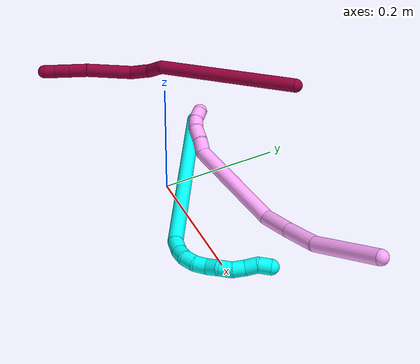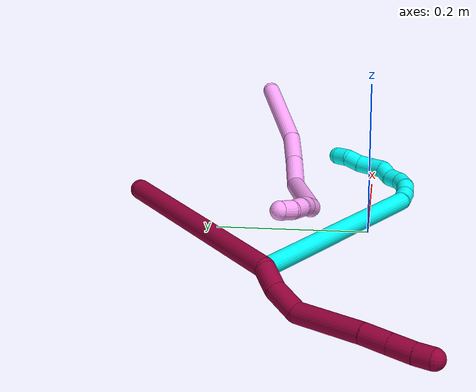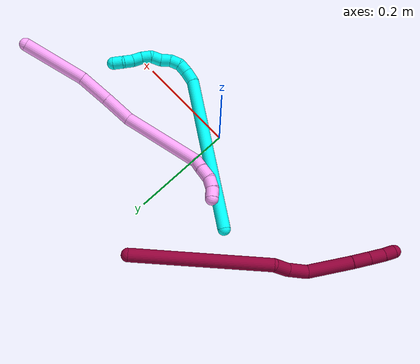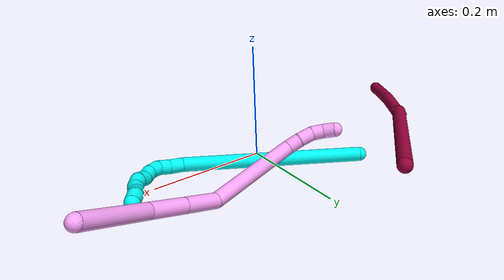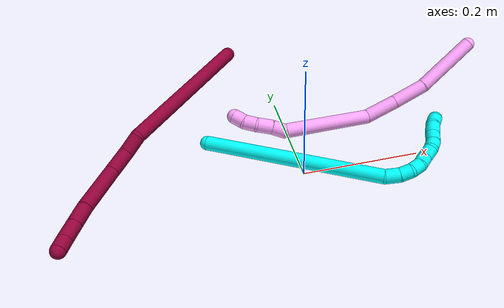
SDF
<sdf version="1.7">
 <world name="default">
  <model name="3">
   <static>0</static>
   <link name="3">
    <collision name="collision-cylinder-e_1_1_4">
     <pose>0.138157 -0.073204 -0.004298 1.62945 1.08284 1.13537</pose>
     <geometry><cylinder><radius>0.0125</radius><length>0.312823</length></cylinder></geometry>
     <surface>
      <friction><ode><mu>1.16</mu><mu2>1.16</mu2><slip1>0</slip1><slip2>0</slip2></ode></friction>
      <contact><ode><kp>1e+06</kp><kd>1</kd><max_vel>0</max_vel><min_depth>0.001</min_depth></ode></contact>
     </surface>
    </collision>
    <visual name="visual-cylinder-e_1_1_4">
     <pose>0.138157 -0.073204 -0.004298 1.62945 1.08284 1.13537</pose>
     <geometry><cylinder><radius>0.0125</radius><length>0.312823</length></cylinder></geometry>
     <material><ambient>0.003922 1 0.996078 1</ambient></material>
    </visual>
    <collision name="collision-cylinder-e_2_4_5">
     <pose>0.288252 -0.148727 -0.006095 0.747762 1.29242 0.57541</pose>
     <geometry><cylinder><radius>0.0125</radius><length>0.024833</length></cylinder></geometry>
     <surface>
      <friction><ode><mu>1.16</mu><mu2>1.16</mu2><slip1>0</slip1><slip2>0</slip2></ode></friction>
      <contact><ode><kp>1e+06</kp><kd>1</kd><max_vel>0</max_vel><min_depth>0.001</min_depth></ode></contact>
     </surface>
    </collision>
    <visual name="visual-cylinder-e_2_4_5">
     <pose>0.288252 -0.148727 -0.006095 0.747762 1.29242 0.57541</pose>
     <geometry><cylinder><radius>0.0125</radius><length>0.024833</length></cylinder></geometry>
     <material><ambient>0.003922 1 0.996078 1</ambient></material>
    </visual>
    <collision name="collision-cylinder-e_3_5_6">
     <pose>0.309434 -0.15204 0.000753 0.224431 1.12141 0.141286</pose>
     <geometry><cylinder><radius>0.0125</radius><length>0.020525</length></cylinder></geometry>
     <surface>
      <friction><ode><mu>1.16</mu><mu2>1.16</mu2><slip1>0</slip1><slip2>0</slip2></ode></friction>
      <contact><ode><kp>1e+06</kp><kd>1</kd><max_vel>0</max_vel><min_depth>0.001</min_depth></ode></contact>
     </surface>
    </collision>
    <visual name="visual-cylinder-e_3_5_6">
     <pose>0.309434 -0.15204 0.000753 0.224431 1.12141 0.141286</pose>
     <geometry><cylinder><radius>0.0125</radius><length>0.020525</length></cylinder></geometry>
     <material><ambient>0.003922 1 0.996078 1</ambient></material>
    </visual>
    <collision name="collision-cylinder-e_4_6_7">
     <pose>0.327327 -0.149508 0.009386 -0.687976 1.0004 -0.386699</pose>
     <geometry><cylinder><radius>0.0125</radius><length>0.020554</length></cylinder></geometry>
     <surface>
      <friction><ode><mu>1.16</mu><mu2>1.16</mu2><slip1>0</slip1><slip2>0</slip2></ode></friction>
      <contact><ode><kp>1e+06</kp><kd>1</kd><max_vel>0</max_vel><min_depth>0.001</min_depth></ode></contact>
     </surface>
    </collision>
    <visual name="visual-cylinder-e_4_6_7">
     <pose>0.327327 -0.149508 0.009386 -0.687976 1.0004 -0.386699</pose>
     <geometry><cylinder><radius>0.0125</radius><length>0.020554</length></cylinder></geometry>
     <material><ambient>0.003922 1 0.996078 1</ambient></material>
    </visual>
    <collision name="collision-cylinder-e_5_7_8">
     <pose>0.342434 -0.139325 0.018366 -0.956951 0.670161 -0.357365</pose>
     <geometry><cylinder><radius>0.0125</radius><length>0.020789</length></cylinder></geometry>
     <surface>
      <friction><ode><mu>1.16</mu><mu2>1.16</mu2><slip1>0</slip1><slip2>0</slip2></ode></friction>
      <contact><ode><kp>1e+06</kp><kd>1</kd><max_vel>0</max_vel><min_depth>0.001</min_depth></ode></contact>
     </surface>
    </collision>
    <visual name="visual-cylinder-e_5_7_8">
     <pose>0.342434 -0.139325 0.018366 -0.956951 0.670161 -0.357365</pose>
     <geometry><cylinder><radius>0.0125</radius><length>0.020789</length></cylinder></geometry>
     <material><ambient>0.003922 1 0.996078 1</ambient></material>
    </visual>
    <collision name="collision-cylinder-e_6_8_9">
     <pose>0.355185 -0.129163 0.030053 -0.464281 0.677576 -0.16622</pose>
     <geometry><cylinder><radius>0.0125</radius><length>0.020082</length></cylinder></geometry>
     <surface>
      <friction><ode><mu>1.16</mu><mu2>1.16</mu2><slip1>0</slip1><slip2>0</slip2></ode></friction>
      <contact><ode><kp>1e+06</kp><kd>1</kd><max_vel>0</max_vel><min_depth>0.001</min_depth></ode></contact>
     </surface>
    </collision>
    <visual name="visual-cylinder-e_6_8_9">
     <pose>0.355185 -0.129163 0.030053 -0.464281 0.677576 -0.16622</pose>
     <geometry><cylinder><radius>0.0125</radius><length>0.020082</length></cylinder></geometry>
     <material><ambient>0.003922 1 0.996078 1</ambient></material>
    </visual>
    <collision name="collision-cylinder-e_7_9_10">
     <pose>0.366541 -0.118111 0.041249 -1.06292 0.529953 -0.316386</pose>
     <geometry><cylinder><radius>0.0125</radius><length>0.020026</length></cylinder></geometry>
     <surface>
      <friction><ode><mu>1.16</mu><mu2>1.16</mu2><slip1>0</slip1><slip2>0</slip2></ode></friction>
      <contact><ode><kp>1e+06</kp><kd>1</kd><max_vel>0</max_vel><min_depth>0.001</min_depth></ode></contact>
     </surface>
    </collision>
    <visual name="visual-cylinder-e_7_9_10">
     <pose>0.366541 -0.118111 0.041249 -1.06292 0.529953 -0.316386</pose>
     <geometry><cylinder><radius>0.0125</radius><length>0.020026</length></cylinder></geometry>
     <material><ambient>0.003922 1 0.996078 1</ambient></material>
    </visual>
    <collision name="collision-cylinder-e_8_10_11">
     <pose>0.373842 -0.102319 0.050891 -0.987389 0.222951 -0.120334</pose>
     <geometry><cylinder><radius>0.0125</radius><length>0.020255</length></cylinder></geometry>
     <surface>
      <friction><ode><mu>1.16</mu><mu2>1.16</mu2><slip1>0</slip1><slip2>0</slip2></ode></friction>
      <contact><ode><kp>1e+06</kp><kd>1</kd><max_vel>0</max_vel><min_depth>0.001</min_depth></ode></contact>
     </surface>
    </collision>
    <visual name="visual-cylinder-e_8_10_11">
     <pose>0.373842 -0.102319 0.050891 -0.987389 0.222951 -0.120334</pose>
     <geometry><cylinder><radius>0.0125</radius><length>0.020255</length></cylinder></geometry>
     <material><ambient>0.003922 1 0.996078 1</ambient></material>
    </visual>
    <collision name="collision-cylinder-e_9_11_12">
     <pose>0.37854 -0.087275 0.063304 -0.773012 0.24736 -0.1011</pose>
     <geometry><cylinder><radius>0.0125</radius><length>0.020092</length></cylinder></geometry>
     <surface>
      <friction><ode><mu>1.16</mu><mu2>1.16</mu2><slip1>0</slip1><slip2>0</slip2></ode></friction>
      <contact><ode><kp>1e+06</kp><kd>1</kd><max_vel>0</max_vel><min_depth>0.001</min_depth></ode></contact>
     </surface>
    </collision>
    <visual name="visual-cylinder-e_9_11_12">
     <pose>0.37854 -0.087275 0.063304 -0.773012 0.24736 -0.1011</pose>
     <geometry><cylinder><radius>0.0125</radius><length>0.020092</length></cylinder></geometry>
     <material><ambient>0.003922 1 0.996078 1</ambient></material>
    </visual>
    <collision name="collision-cylinder-e_10_12_2">
     <pose>0.386054 -0.072851 0.074349 -1.08011 0.529131 -0.322021</pose>
     <geometry><cylinder><radius>0.0125</radius><length>0.020022</length></cylinder></geometry>
     <surface>
      <friction><ode><mu>1.16</mu><mu2>1.16</mu2><slip1>0</slip1><slip2>0</slip2></ode></friction>
      <contact><ode><kp>1e+06</kp><kd>1</kd><max_vel>0</max_vel><min_depth>0.001</min_depth></ode></contact>
     </surface>
    </collision>
    <visual name="visual-cylinder-e_10_12_2">
     <pose>0.386054 -0.072851 0.074349 -1.08011 0.529131 -0.322021</pose>
     <geometry><cylinder><radius>0.0125</radius><length>0.020022</length></cylinder></geometry>
     <material><ambient>0.003922 1 0.996078 1</ambient></material>
    </visual>
    <collision name="collision-sphere-2">
     <pose>0.391107 -0.065228 0.078421 0 -0 0</pose>
     <geometry><sphere><radius>0.0125</radius></sphere></geometry>
     <surface>
      <friction><ode><mu>1.16</mu><mu2>1.16</mu2><slip1>0</slip1><slip2>0</slip2></ode></friction>
      <contact><ode><kp>1e+06</kp><kd>1</kd><max_vel>0</max_vel><min_depth>0.001</min_depth></ode></contact>
     </surface>
    </collision>
    <visual name="visual-sphere-2">
     <pose>0.391107 -0.065228 0.078421 0 -0 0</pose>
     <geometry><sphere><radius>0.0125</radius></sphere></geometry>
     <material><ambient>0.003922 1 0.996078 1</ambient></material>
    </visual>
    <collision name="collision-sphere-12">
     <pose>0.381 -0.080473 0.070276 0 -0 0</pose>
     <geometry><sphere><radius>0.0125</radius></sphere></geometry>
     <surface>
      <friction><ode><mu>1.16</mu><mu2>1.16</mu2><slip1>0</slip1><slip2>0</slip2></ode></friction>
      <contact><ode><kp>1e+06</kp><kd>1</kd><max_vel>0</max_vel><min_depth>0.001</min_depth></ode></contact>
     </surface>
    </collision>
    <visual name="visual-sphere-12">
     <pose>0.381 -0.080473 0.070276 0 -0 0</pose>
     <geometry><sphere><radius>0.0125</radius></sphere></geometry>
     <material><ambient>0.003922 1 0.996078 1</ambient></material>
    </visual>
    <collision name="collision-sphere-11">
     <pose>0.376081 -0.094076 0.056332 0 -0 0</pose>
     <geometry><sphere><radius>0.0125</radius></sphere></geometry>
     <surface>
      <friction><ode><mu>1.16</mu><mu2>1.16</mu2><slip1>0</slip1><slip2>0</slip2></ode></friction>
      <contact><ode><kp>1e+06</kp><kd>1</kd><max_vel>0</max_vel><min_depth>0.001</min_depth></ode></contact>
     </surface>
    </collision>
    <visual name="visual-sphere-11">
     <pose>0.376081 -0.094076 0.056332 0 -0 0</pose>
     <geometry><sphere><radius>0.0125</radius></sphere></geometry>
     <material><ambient>0.003922 1 0.996078 1</ambient></material>
    </visual>
    <collision name="collision-sphere-10">
     <pose>0.371602 -0.110562 0.045451 0 -0 0</pose>
     <geometry><sphere><radius>0.0125</radius></sphere></geometry>
     <surface>
      <friction><ode><mu>1.16</mu><mu2>1.16</mu2><slip1>0</slip1><slip2>0</slip2></ode></friction>
      <contact><ode><kp>1e+06</kp><kd>1</kd><max_vel>0</max_vel><min_depth>0.001</min_depth></ode></contact>
     </surface>
    </collision>
    <visual name="visual-sphere-10">
     <pose>0.371602 -0.110562 0.045451 0 -0 0</pose>
     <geometry><sphere><radius>0.0125</radius></sphere></geometry>
     <material><ambient>0.003922 1 0.996078 1</ambient></material>
    </visual>
    <collision name="collision-sphere-9">
     <pose>0.361479 -0.12566 0.037047 0 -0 0</pose>
     <geometry><sphere><radius>0.0125</radius></sphere></geometry>
     <surface>
      <friction><ode><mu>1.16</mu><mu2>1.16</mu2><slip1>0</slip1><slip2>0</slip2></ode></friction>
      <contact><ode><kp>1e+06</kp><kd>1</kd><max_vel>0</max_vel><min_depth>0.001</min_depth></ode></contact>
     </surface>
    </collision>
    <visual name="visual-sphere-9">
     <pose>0.361479 -0.12566 0.037047 0 -0 0</pose>
     <geometry><sphere><radius>0.0125</radius></sphere></geometry>
     <material><ambient>0.003922 1 0.996078 1</ambient></material>
    </visual>
    <collision name="collision-sphere-4">
     <pose>0.276313 -0.146407 -0.008597 0 -0 0</pose>
     <geometry><sphere><radius>0.0125</radius></sphere></geometry>
     <surface>
      <friction><ode><mu>1.16</mu><mu2>1.16</mu2><slip1>0</slip1><slip2>0</slip2></ode></friction>
      <contact><ode><kp>1e+06</kp><kd>1</kd><max_vel>0</max_vel><min_depth>0.001</min_depth></ode></contact>
     </surface>
    </collision>
    <visual name="visual-sphere-4">
     <pose>0.276313 -0.146407 -0.008597 0 -0 0</pose>
     <geometry><sphere><radius>0.0125</radius></sphere></geometry>
     <material><ambient>0.003922 1 0.996078 1</ambient></material>
    </visual>
    <collision name="collision-sphere-1">
     <geometry><sphere><radius>0.0125</radius></sphere></geometry>
     <surface>
      <friction><ode><mu>1.16</mu><mu2>1.16</mu2><slip1>0</slip1><slip2>0</slip2></ode></friction>
      <contact><ode><kp>1e+06</kp><kd>1</kd><max_vel>0</max_vel><min_depth>0.001</min_depth></ode></contact>
     </surface>
    </collision>
    <visual name="visual-sphere-1">
     <geometry><sphere><radius>0.0125</radius></sphere></geometry>
     <material><ambient>0.003922 1 0.996078 1</ambient></material>
    </visual>
    <collision name="collision-sphere-8">
     <pose>0.34889 -0.132666 0.023058 0 -0 0</pose>
     <geometry><sphere><radius>0.0125</radius></sphere></geometry>
     <surface>
      <friction><ode><mu>1.16</mu><mu2>1.16</mu2><slip1>0</slip1><slip2>0</slip2></ode></friction>
      <contact><ode><kp>1e+06</kp><kd>1</kd><max_vel>0</max_vel><min_depth>0.001</min_depth></ode></contact>
     </surface>
    </collision>
    <visual name="visual-sphere-8">
     <pose>0.34889 -0.132666 0.023058 0 -0 0</pose>
     <geometry><sphere><radius>0.0125</radius></sphere></geometry>
     <material><ambient>0.003922 1 0.996078 1</ambient></material>
    </visual>
    <collision name="collision-sphere-5">
     <pose>0.30019 -0.151047 -0.003594 0 -0 0</pose>
     <geometry><sphere><radius>0.0125</radius></sphere></geometry>
     <surface>
      <friction><ode><mu>1.16</mu><mu2>1.16</mu2><slip1>0</slip1><slip2>0</slip2></ode></friction>
      <contact><ode><kp>1e+06</kp><kd>1</kd><max_vel>0</max_vel><min_depth>0.001</min_depth></ode></contact>
     </surface>
    </collision>
    <visual name="visual-sphere-5">
     <pose>0.30019 -0.151047 -0.003594 0 -0 0</pose>
     <geometry><sphere><radius>0.0125</radius></sphere></geometry>
     <material><ambient>0.003922 1 0.996078 1</ambient></material>
    </visual>
    <collision name="collision-sphere-6">
     <pose>0.318677 -0.153032 0.005099 0 -0 0</pose>
     <geometry><sphere><radius>0.0125</radius></sphere></geometry>
     <surface>
      <friction><ode><mu>1.16</mu><mu2>1.16</mu2><slip1>0</slip1><slip2>0</slip2></ode></friction>
      <contact><ode><kp>1e+06</kp><kd>1</kd><max_vel>0</max_vel><min_depth>0.001</min_depth></ode></contact>
     </surface>
    </collision>
    <visual name="visual-sphere-6">
     <pose>0.318677 -0.153032 0.005099 0 -0 0</pose>
     <geometry><sphere><radius>0.0125</radius></sphere></geometry>
     <material><ambient>0.003922 1 0.996078 1</ambient></material>
    </visual>
    <collision name="collision-sphere-7">
     <pose>0.335977 -0.145985 0.013673 0 -0 0</pose>
     <geometry><sphere><radius>0.0125</radius></sphere></geometry>
     <surface>
      <friction><ode><mu>1.16</mu><mu2>1.16</mu2><slip1>0</slip1><slip2>0</slip2></ode></friction>
      <contact><ode><kp>1e+06</kp><kd>1</kd><max_vel>0</max_vel><min_depth>0.001</min_depth></ode></contact>
     </surface>
    </collision>
    <visual name="visual-sphere-7">
     <pose>0.335977 -0.145985 0.013673 0 -0 0</pose>
     <geometry><sphere><radius>0.0125</radius></sphere></geometry>
     <material><ambient>0.003922 1 0.996078 1</ambient></material>
    </visual>
    <inertial>
     <pose>0.21591 -0.091854 0.00863 0 -0 0</pose>
     <mass>0.5</mass>
     <inertia>
      <ixx>0.001635</ixx>
      <ixy>0</ixy>
      <ixz>0</ixz>
      <iyy>0.00308</iyy>
      <iyz>0</iyz>
      <izz>-0.001073</izz>
     </inertia>
    </inertial>
   </link>
   <pose>-0.140367 0.121145 0.001709 -0.427833 0.189242 -0.102893</pose>
  </model>
  <model name="4">
   <static>0</static>
   <link name="4">
    <collision name="collision-cylinder-e_1_1_4">
     <pose>-0.015275 0.024396 -0.053112 -2.71101 -0.255633 1.06264</pose>
     <geometry><cylinder><radius>0.0125</radius><length>0.12082</length></cylinder></geometry>
     <surface>
      <friction><ode><mu>1.16</mu><mu2>1.16</mu2><slip1>0</slip1><slip2>0</slip2></ode></friction>
      <contact><ode><kp>1e+06</kp><kd>1</kd><max_vel>0</max_vel><min_depth>0.001</min_depth></ode></contact>
     </surface>
    </collision>
    <visual name="visual-cylinder-e_1_1_4">
     <pose>-0.015275 0.024396 -0.053112 -2.71101 -0.255633 1.06264</pose>
     <geometry><cylinder><radius>0.0125</radius><length>0.12082</length></cylinder></geometry>
     <material><ambient>1 0.65098 0.996078 1</ambient></material>
    </visual>
    <collision name="collision-cylinder-e_2_4_5">
     <pose>-0.04304 0.055819 -0.133365 -2.88823 -0.419088 2.0624</pose>
     <geometry><cylinder><radius>0.0125</radius><length>0.061385</length></cylinder></geometry>
     <surface>
      <friction><ode><mu>1.16</mu><mu2>1.16</mu2><slip1>0</slip1><slip2>0</slip2></ode></friction>
      <contact><ode><kp>1e+06</kp><kd>1</kd><max_vel>0</max_vel><min_depth>0.001</min_depth></ode></contact>
     </surface>
    </collision>
    <visual name="visual-cylinder-e_2_4_5">
     <pose>-0.04304 0.055819 -0.133365 -2.88823 -0.419088 2.0624</pose>
     <geometry><cylinder><radius>0.0125</radius><length>0.061385</length></cylinder></geometry>
     <material><ambient>1 0.65098 0.996078 1</ambient></material>
    </visual>
    <collision name="collision-cylinder-e_3_5_6">
     <pose>-0.067983 0.068787 -0.18648 -2.91676 -0.437226 2.20129</pose>
     <geometry><cylinder><radius>0.0125</radius><length>0.058821</length></cylinder></geometry>
     <surface>
      <friction><ode><mu>1.16</mu><mu2>1.16</mu2><slip1>0</slip1><slip2>0</slip2></ode></friction>
      <contact><ode><kp>1e+06</kp><kd>1</kd><max_vel>0</max_vel><min_depth>0.001</min_depth></ode></contact>
     </surface>
    </collision>
    <visual name="visual-cylinder-e_3_5_6">
     <pose>-0.067983 0.068787 -0.18648 -2.91676 -0.437226 2.20129</pose>
     <geometry><cylinder><radius>0.0125</radius><length>0.058821</length></cylinder></geometry>
     <material><ambient>1 0.65098 0.996078 1</ambient></material>
    </visual>
    <collision name="collision-cylinder-e_4_6_7">
     <pose>-0.095822 0.06078 -0.293569 2.97132 -0.184799 -1.65302</pose>
     <geometry><cylinder><radius>0.0125</radius><length>0.167464</length></cylinder></geometry>
     <surface>
      <friction><ode><mu>1.16</mu><mu2>1.16</mu2><slip1>0</slip1><slip2>0</slip2></ode></friction>
      <contact><ode><kp>1e+06</kp><kd>1</kd><max_vel>0</max_vel><min_depth>0.001</min_depth></ode></contact>
     </surface>
    </collision>
    <visual name="visual-cylinder-e_4_6_7">
     <pose>-0.095822 0.06078 -0.293569 2.97132 -0.184799 -1.65302</pose>
     <geometry><cylinder><radius>0.0125</radius><length>0.167464</length></cylinder></geometry>
     <material><ambient>1 0.65098 0.996078 1</ambient></material>
    </visual>
    <collision name="collision-cylinder-e_5_7_8">
     <pose>-0.115599 0.040248 -0.383652 2.50811 -0.37599 -1.05176</pose>
     <geometry><cylinder><radius>0.0125</radius><length>0.023922</length></cylinder></geometry>
     <surface>
      <friction><ode><mu>1.16</mu><mu2>1.16</mu2><slip1>0</slip1><slip2>0</slip2></ode></friction>
      <contact><ode><kp>1e+06</kp><kd>1</kd><max_vel>0</max_vel><min_depth>0.001</min_depth></ode></contact>
     </surface>
    </collision>
    <visual name="visual-cylinder-e_5_7_8">
     <pose>-0.115599 0.040248 -0.383652 2.50811 -0.37599 -1.05176</pose>
     <geometry><cylinder><radius>0.0125</radius><length>0.023922</length></cylinder></geometry>
     <material><ambient>1 0.65098 0.996078 1</ambient></material>
    </visual>
    <collision name="collision-cylinder-e_6_8_9">
     <pose>-0.125293 0.028248 -0.403143 2.66641 -0.421146 -1.44626</pose>
     <geometry><cylinder><radius>0.0125</radius><length>0.025938</length></cylinder></geometry>
     <surface>
      <friction><ode><mu>1.16</mu><mu2>1.16</mu2><slip1>0</slip1><slip2>0</slip2></ode></friction>
      <contact><ode><kp>1e+06</kp><kd>1</kd><max_vel>0</max_vel><min_depth>0.001</min_depth></ode></contact>
     </surface>
    </collision>
    <visual name="visual-cylinder-e_6_8_9">
     <pose>-0.125293 0.028248 -0.403143 2.66641 -0.421146 -1.44626</pose>
     <geometry><cylinder><radius>0.0125</radius><length>0.025938</length></cylinder></geometry>
     <material><ambient>1 0.65098 0.996078 1</ambient></material>
    </visual>
    <collision name="collision-cylinder-e_7_9_10">
     <pose>-0.137673 0.018544 -0.420048 2.54983 -0.744114 -1.81532</pose>
     <geometry><cylinder><radius>0.0125</radius><length>0.020901</length></cylinder></geometry>
     <surface>
      <friction><ode><mu>1.16</mu><mu2>1.16</mu2><slip1>0</slip1><slip2>0</slip2></ode></friction>
      <contact><ode><kp>1e+06</kp><kd>1</kd><max_vel>0</max_vel><min_depth>0.001</min_depth></ode></contact>
     </surface>
    </collision>
    <visual name="visual-cylinder-e_7_9_10">
     <pose>-0.137673 0.018544 -0.420048 2.54983 -0.744114 -1.81532</pose>
     <geometry><cylinder><radius>0.0125</radius><length>0.020901</length></cylinder></geometry>
     <material><ambient>1 0.65098 0.996078 1</ambient></material>
    </visual>
    <collision name="collision-cylinder-e_8_10_2">
     <pose>-0.152737 0.008633 -0.429929 2.12762 -0.878409 -1.4042</pose>
     <geometry><cylinder><radius>0.0125</radius><length>0.02075</length></cylinder></geometry>
     <surface>
      <friction><ode><mu>1.16</mu><mu2>1.16</mu2><slip1>0</slip1><slip2>0</slip2></ode></friction>
      <contact><ode><kp>1e+06</kp><kd>1</kd><max_vel>0</max_vel><min_depth>0.001</min_depth></ode></contact>
     </surface>
    </collision>
    <visual name="visual-cylinder-e_8_10_2">
     <pose>-0.152737 0.008633 -0.429929 2.12762 -0.878409 -1.4042</pose>
     <geometry><cylinder><radius>0.0125</radius><length>0.02075</length></cylinder></geometry>
     <material><ambient>1 0.65098 0.996078 1</ambient></material>
    </visual>
    <collision name="collision-sphere-2">
     <pose>-0.160723 0.00301 -0.43343 0 -0 0</pose>
     <geometry><sphere><radius>0.0125</radius></sphere></geometry>
     <surface>
      <friction><ode><mu>1.16</mu><mu2>1.16</mu2><slip1>0</slip1><slip2>0</slip2></ode></friction>
      <contact><ode><kp>1e+06</kp><kd>1</kd><max_vel>0</max_vel><min_depth>0.001</min_depth></ode></contact>
     </surface>
    </collision>
    <visual name="visual-sphere-2">
     <pose>-0.160723 0.00301 -0.43343 0 -0 0</pose>
     <geometry><sphere><radius>0.0125</radius></sphere></geometry>
     <material><ambient>1 0.65098 0.996078 1</ambient></material>
    </visual>
    <collision name="collision-sphere-10">
     <pose>-0.144751 0.014255 -0.426429 0 -0 0</pose>
     <geometry><sphere><radius>0.0125</radius></sphere></geometry>
     <surface>
      <friction><ode><mu>1.16</mu><mu2>1.16</mu2><slip1>0</slip1><slip2>0</slip2></ode></friction>
      <contact><ode><kp>1e+06</kp><kd>1</kd><max_vel>0</max_vel><min_depth>0.001</min_depth></ode></contact>
     </surface>
    </collision>
    <visual name="visual-sphere-10">
     <pose>-0.144751 0.014255 -0.426429 0 -0 0</pose>
     <geometry><sphere><radius>0.0125</radius></sphere></geometry>
     <material><ambient>1 0.65098 0.996078 1</ambient></material>
    </visual>
    <collision name="collision-sphere-9">
     <pose>-0.130595 0.022833 -0.413667 0 -0 0</pose>
     <geometry><sphere><radius>0.0125</radius></sphere></geometry>
     <surface>
      <friction><ode><mu>1.16</mu><mu2>1.16</mu2><slip1>0</slip1><slip2>0</slip2></ode></friction>
      <contact><ode><kp>1e+06</kp><kd>1</kd><max_vel>0</max_vel><min_depth>0.001</min_depth></ode></contact>
     </surface>
    </collision>
    <visual name="visual-sphere-9">
     <pose>-0.130595 0.022833 -0.413667 0 -0 0</pose>
     <geometry><sphere><radius>0.0125</radius></sphere></geometry>
     <material><ambient>1 0.65098 0.996078 1</ambient></material>
    </visual>
    <collision name="collision-sphere-4">
     <pose>-0.03055 0.048792 -0.106223 0 -0 0</pose>
     <geometry><sphere><radius>0.0125</radius></sphere></geometry>
     <surface>
      <friction><ode><mu>1.16</mu><mu2>1.16</mu2><slip1>0</slip1><slip2>0</slip2></ode></friction>
      <contact><ode><kp>1e+06</kp><kd>1</kd><max_vel>0</max_vel><min_depth>0.001</min_depth></ode></contact>
     </surface>
    </collision>
    <visual name="visual-sphere-4">
     <pose>-0.03055 0.048792 -0.106223 0 -0 0</pose>
     <geometry><sphere><radius>0.0125</radius></sphere></geometry>
     <material><ambient>1 0.65098 0.996078 1</ambient></material>
    </visual>
    <collision name="collision-sphere-1">
     <geometry><sphere><radius>0.0125</radius></sphere></geometry>
     <surface>
      <friction><ode><mu>1.16</mu><mu2>1.16</mu2><slip1>0</slip1><slip2>0</slip2></ode></friction>
      <contact><ode><kp>1e+06</kp><kd>1</kd><max_vel>0</max_vel><min_depth>0.001</min_depth></ode></contact>
     </surface>
    </collision>
    <visual name="visual-sphere-1">
     <geometry><sphere><radius>0.0125</radius></sphere></geometry>
     <material><ambient>1 0.65098 0.996078 1</ambient></material>
    </visual>
    <collision name="collision-sphere-8">
     <pose>-0.119991 0.033663 -0.392618 0 -0 0</pose>
     <geometry><sphere><radius>0.0125</radius></sphere></geometry>
     <surface>
      <friction><ode><mu>1.16</mu><mu2>1.16</mu2><slip1>0</slip1><slip2>0</slip2></ode></friction>
      <contact><ode><kp>1e+06</kp><kd>1</kd><max_vel>0</max_vel><min_depth>0.001</min_depth></ode></contact>
     </surface>
    </collision>
    <visual name="visual-sphere-8">
     <pose>-0.119991 0.033663 -0.392618 0 -0 0</pose>
     <geometry><sphere><radius>0.0125</radius></sphere></geometry>
     <material><ambient>1 0.65098 0.996078 1</ambient></material>
    </visual>
    <collision name="collision-sphere-5">
     <pose>-0.05553 0.062847 -0.160506 0 -0 0</pose>
     <geometry><sphere><radius>0.0125</radius></sphere></geometry>
     <surface>
      <friction><ode><mu>1.16</mu><mu2>1.16</mu2><slip1>0</slip1><slip2>0</slip2></ode></friction>
      <contact><ode><kp>1e+06</kp><kd>1</kd><max_vel>0</max_vel><min_depth>0.001</min_depth></ode></contact>
     </surface>
    </collision>
    <visual name="visual-sphere-5">
     <pose>-0.05553 0.062847 -0.160506 0 -0 0</pose>
     <geometry><sphere><radius>0.0125</radius></sphere></geometry>
     <material><ambient>1 0.65098 0.996078 1</ambient></material>
    </visual>
    <collision name="collision-sphere-6">
     <pose>-0.080436 0.074727 -0.212453 0 -0 0</pose>
     <geometry><sphere><radius>0.0125</radius></sphere></geometry>
     <surface>
      <friction><ode><mu>1.16</mu><mu2>1.16</mu2><slip1>0</slip1><slip2>0</slip2></ode></friction>
      <contact><ode><kp>1e+06</kp><kd>1</kd><max_vel>0</max_vel><min_depth>0.001</min_depth></ode></contact>
     </surface>
    </collision>
    <visual name="visual-sphere-6">
     <pose>-0.080436 0.074727 -0.212453 0 -0 0</pose>
     <geometry><sphere><radius>0.0125</radius></sphere></geometry>
     <material><ambient>1 0.65098 0.996078 1</ambient></material>
    </visual>
    <collision name="collision-sphere-7">
     <pose>-0.111207 0.046834 -0.374685 0 -0 0</pose>
     <geometry><sphere><radius>0.0125</radius></sphere></geometry>
     <surface>
      <friction><ode><mu>1.16</mu><mu2>1.16</mu2><slip1>0</slip1><slip2>0</slip2></ode></friction>
      <contact><ode><kp>1e+06</kp><kd>1</kd><max_vel>0</max_vel><min_depth>0.001</min_depth></ode></contact>
     </surface>
    </collision>
    <visual name="visual-sphere-7">
     <pose>-0.111207 0.046834 -0.374685 0 -0 0</pose>
     <geometry><sphere><radius>0.0125</radius></sphere></geometry>
     <material><ambient>1 0.65098 0.996078 1</ambient></material>
    </visual>
    <inertial>
     <pose>-0.07319 0.045722 -0.224139 0 -0 0</pose>
     <mass>0.5</mass>
     <inertia>
      <ixx>-0.000228</ixx>
      <ixy>0</ixy>
      <ixz>0</ixz>
      <iyy>-0.000218</iyy>
      <iyz>0</iyz>
      <izz>9.8e-05</izz>
     </inertia>
    </inertial>
   </link>
   <pose>0.365479 0.165123 0.096126 -1.66013 -0.443621 -1.09016</pose>
  </model>
  <model name="8">
   <static>0</static>
   <link name="8">
    <collision name="collision-cylinder-e_1_1_4">
     <pose>-0.046524 -0.081437 0.089057 0.740736 -0.367962 -0.144258</pose>
     <geometry><cylinder><radius>0.0125</radius><length>0.258671</length></cylinder></geometry>
     <surface>
      <friction><ode><mu>1.16</mu><mu2>1.16</mu2><slip1>0</slip1><slip2>0</slip2></ode></friction>
      <contact><ode><kp>1e+06</kp><kd>1</kd><max_vel>0</max_vel><min_depth>0.001</min_depth></ode></contact>
     </surface>
    </collision>
    <visual name="visual-cylinder-e_1_1_4">
     <pose>-0.046524 -0.081437 0.089057 0.740736 -0.367962 -0.144258</pose>
     <geometry><cylinder><radius>0.0125</radius><length>0.258671</length></cylinder></geometry>
     <material><ambient>0.584314 0 0.227451 1</ambient></material>
    </visual>
    <collision name="collision-cylinder-e_2_4_5">
     <pose>-0.092322 -0.176493 0.18583 1.05533 0.046302 0.026987</pose>
     <geometry><cylinder><radius>0.0125</radius><length>0.031339</length></cylinder></geometry>
     <surface>
      <friction><ode><mu>1.16</mu><mu2>1.16</mu2><slip1>0</slip1><slip2>0</slip2></ode></friction>
      <contact><ode><kp>1e+06</kp><kd>1</kd><max_vel>0</max_vel><min_depth>0.001</min_depth></ode></contact>
     </surface>
    </collision>
    <visual name="visual-cylinder-e_2_4_5">
     <pose>-0.092322 -0.176493 0.18583 1.05533 0.046302 0.026987</pose>
     <geometry><cylinder><radius>0.0125</radius><length>0.031339</length></cylinder></geometry>
     <material><ambient>0.584314 0 0.227451 1</ambient></material>
    </visual>
    <collision name="collision-cylinder-e_3_5_6">
     <pose>-0.094146 -0.204942 0.206692 0.845504 -0.127891 -0.057598</pose>
     <geometry><cylinder><radius>0.0125</radius><length>0.039963</length></cylinder></geometry>
     <surface>
      <friction><ode><mu>1.16</mu><mu2>1.16</mu2><slip1>0</slip1><slip2>0</slip2></ode></friction>
      <contact><ode><kp>1e+06</kp><kd>1</kd><max_vel>0</max_vel><min_depth>0.001</min_depth></ode></contact>
     </surface>
    </collision>
    <visual name="visual-cylinder-e_3_5_6">
     <pose>-0.094146 -0.204942 0.206692 0.845504 -0.127891 -0.057598</pose>
     <geometry><cylinder><radius>0.0125</radius><length>0.039963</length></cylinder></geometry>
     <material><ambient>0.584314 0 0.227451 1</ambient></material>
    </visual>
    <collision name="collision-cylinder-e_4_6_7">
     <pose>-0.110627 -0.237599 0.256404 0.453615 -0.329973 -0.076811</pose>
     <geometry><cylinder><radius>0.0125</radius><length>0.086</length></cylinder></geometry>
     <surface>
      <friction><ode><mu>1.16</mu><mu2>1.16</mu2><slip1>0</slip1><slip2>0</slip2></ode></friction>
      <contact><ode><kp>1e+06</kp><kd>1</kd><max_vel>0</max_vel><min_depth>0.001</min_depth></ode></contact>
     </surface>
    </collision>
    <visual name="visual-cylinder-e_4_6_7">
     <pose>-0.110627 -0.237599 0.256404 0.453615 -0.329973 -0.076811</pose>
     <geometry><cylinder><radius>0.0125</radius><length>0.086</length></cylinder></geometry>
     <material><ambient>0.584314 0 0.227451 1</ambient></material>
    </visual>
    <collision name="collision-cylinder-e_5_7_8">
     <pose>-0.128567 -0.262753 0.30756 0.465408 -0.240723 -0.057312</pose>
     <geometry><cylinder><radius>0.0125</radius><length>0.033622</length></cylinder></geometry>
     <surface>
      <friction><ode><mu>1.16</mu><mu2>1.16</mu2><slip1>0</slip1><slip2>0</slip2></ode></friction>
      <contact><ode><kp>1e+06</kp><kd>1</kd><max_vel>0</max_vel><min_depth>0.001</min_depth></ode></contact>
     </surface>
    </collision>
    <visual name="visual-cylinder-e_5_7_8">
     <pose>-0.128567 -0.262753 0.30756 0.465408 -0.240723 -0.057312</pose>
     <geometry><cylinder><radius>0.0125</radius><length>0.033622</length></cylinder></geometry>
     <material><ambient>0.584314 0 0.227451 1</ambient></material>
    </visual>
    <collision name="collision-cylinder-e_6_8_9">
     <pose>-0.136103 -0.276404 0.334929 0.459538 -0.242552 -0.056997</pose>
     <geometry><cylinder><radius>0.0125</radius><length>0.029375</length></cylinder></geometry>
     <surface>
      <friction><ode><mu>1.16</mu><mu2>1.16</mu2><slip1>0</slip1><slip2>0</slip2></ode></friction>
      <contact><ode><kp>1e+06</kp><kd>1</kd><max_vel>0</max_vel><min_depth>0.001</min_depth></ode></contact>
     </surface>
    </collision>
    <visual name="visual-cylinder-e_6_8_9">
     <pose>-0.136103 -0.276404 0.334929 0.459538 -0.242552 -0.056997</pose>
     <geometry><cylinder><radius>0.0125</radius><length>0.029375</length></cylinder></geometry>
     <material><ambient>0.584314 0 0.227451 1</ambient></material>
    </visual>
    <collision name="collision-cylinder-e_7_9_2">
     <pose>-0.142344 -0.286453 0.357159 0.375451 -0.261028 -0.049859</pose>
     <geometry><cylinder><radius>0.0125</radius><length>0.021031</length></cylinder></geometry>
     <surface>
      <friction><ode><mu>1.16</mu><mu2>1.16</mu2><slip1>0</slip1><slip2>0</slip2></ode></friction>
      <contact><ode><kp>1e+06</kp><kd>1</kd><max_vel>0</max_vel><min_depth>0.001</min_depth></ode></contact>
     </surface>
    </collision>
    <visual name="visual-cylinder-e_7_9_2">
     <pose>-0.142344 -0.286453 0.357159 0.375451 -0.261028 -0.049859</pose>
     <geometry><cylinder><radius>0.0125</radius><length>0.021031</length></cylinder></geometry>
     <material><ambient>0.584314 0 0.227451 1</ambient></material>
    </visual>
    <collision name="collision-sphere-2">
     <pose>-0.145058 -0.290178 0.36661 0 -0 0</pose>
     <geometry><sphere><radius>0.0125</radius></sphere></geometry>
     <surface>
      <friction><ode><mu>1.16</mu><mu2>1.16</mu2><slip1>0</slip1><slip2>0</slip2></ode></friction>
      <contact><ode><kp>1e+06</kp><kd>1</kd><max_vel>0</max_vel><min_depth>0.001</min_depth></ode></contact>
     </surface>
    </collision>
    <visual name="visual-sphere-2">
     <pose>-0.145058 -0.290178 0.36661 0 -0 0</pose>
     <geometry><sphere><radius>0.0125</radius></sphere></geometry>
     <material><ambient>0.584314 0 0.227451 1</ambient></material>
    </visual>
    <collision name="collision-sphere-9">
     <pose>-0.13963 -0.282727 0.347707 0 -0 0</pose>
     <geometry><sphere><radius>0.0125</radius></sphere></geometry>
     <surface>
      <friction><ode><mu>1.16</mu><mu2>1.16</mu2><slip1>0</slip1><slip2>0</slip2></ode></friction>
      <contact><ode><kp>1e+06</kp><kd>1</kd><max_vel>0</max_vel><min_depth>0.001</min_depth></ode></contact>
     </surface>
    </collision>
    <visual name="visual-sphere-9">
     <pose>-0.13963 -0.282727 0.347707 0 -0 0</pose>
     <geometry><sphere><radius>0.0125</radius></sphere></geometry>
     <material><ambient>0.584314 0 0.227451 1</ambient></material>
    </visual>
    <collision name="collision-sphere-4">
     <pose>-0.093048 -0.162875 0.178114 0 -0 0</pose>
     <geometry><sphere><radius>0.0125</radius></sphere></geometry>
     <surface>
      <friction><ode><mu>1.16</mu><mu2>1.16</mu2><slip1>0</slip1><slip2>0</slip2></ode></friction>
      <contact><ode><kp>1e+06</kp><kd>1</kd><max_vel>0</max_vel><min_depth>0.001</min_depth></ode></contact>
     </surface>
    </collision>
    <visual name="visual-sphere-4">
     <pose>-0.093048 -0.162875 0.178114 0 -0 0</pose>
     <geometry><sphere><radius>0.0125</radius></sphere></geometry>
     <material><ambient>0.584314 0 0.227451 1</ambient></material>
    </visual>
    <collision name="collision-sphere-1">
     <geometry><sphere><radius>0.0125</radius></sphere></geometry>
     <surface>
      <friction><ode><mu>1.16</mu><mu2>1.16</mu2><slip1>0</slip1><slip2>0</slip2></ode></friction>
      <contact><ode><kp>1e+06</kp><kd>1</kd><max_vel>0</max_vel><min_depth>0.001</min_depth></ode></contact>
     </surface>
    </collision>
    <visual name="visual-sphere-1">
     <geometry><sphere><radius>0.0125</radius></sphere></geometry>
     <material><ambient>0.584314 0 0.227451 1</ambient></material>
    </visual>
    <collision name="collision-sphere-8">
     <pose>-0.132575 -0.27008 0.32215 0 -0 0</pose>
     <geometry><sphere><radius>0.0125</radius></sphere></geometry>
     <surface>
      <friction><ode><mu>1.16</mu><mu2>1.16</mu2><slip1>0</slip1><slip2>0</slip2></ode></friction>
      <contact><ode><kp>1e+06</kp><kd>1</kd><max_vel>0</max_vel><min_depth>0.001</min_depth></ode></contact>
     </surface>
    </collision>
    <visual name="visual-sphere-8">
     <pose>-0.132575 -0.27008 0.32215 0 -0 0</pose>
     <geometry><sphere><radius>0.0125</radius></sphere></geometry>
     <material><ambient>0.584314 0 0.227451 1</ambient></material>
    </visual>
    <collision name="collision-sphere-5">
     <pose>-0.091597 -0.190112 0.193545 0 -0 0</pose>
     <geometry><sphere><radius>0.0125</radius></sphere></geometry>
     <surface>
      <friction><ode><mu>1.16</mu><mu2>1.16</mu2><slip1>0</slip1><slip2>0</slip2></ode></friction>
      <contact><ode><kp>1e+06</kp><kd>1</kd><max_vel>0</max_vel><min_depth>0.001</min_depth></ode></contact>
     </surface>
    </collision>
    <visual name="visual-sphere-5">
     <pose>-0.091597 -0.190112 0.193545 0 -0 0</pose>
     <geometry><sphere><radius>0.0125</radius></sphere></geometry>
     <material><ambient>0.584314 0 0.227451 1</ambient></material>
    </visual>
    <collision name="collision-sphere-6">
     <pose>-0.096694 -0.219772 0.219838 0 -0 0</pose>
     <geometry><sphere><radius>0.0125</radius></sphere></geometry>
     <surface>
      <friction><ode><mu>1.16</mu><mu2>1.16</mu2><slip1>0</slip1><slip2>0</slip2></ode></friction>
      <contact><ode><kp>1e+06</kp><kd>1</kd><max_vel>0</max_vel><min_depth>0.001</min_depth></ode></contact>
     </surface>
    </collision>
    <visual name="visual-sphere-6">
     <pose>-0.096694 -0.219772 0.219838 0 -0 0</pose>
     <geometry><sphere><radius>0.0125</radius></sphere></geometry>
     <material><ambient>0.584314 0 0.227451 1</ambient></material>
    </visual>
    <collision name="collision-sphere-7">
     <pose>-0.124559 -0.255426 0.292971 0 -0 0</pose>
     <geometry><sphere><radius>0.0125</radius></sphere></geometry>
     <surface>
      <friction><ode><mu>1.16</mu><mu2>1.16</mu2><slip1>0</slip1><slip2>0</slip2></ode></friction>
      <contact><ode><kp>1e+06</kp><kd>1</kd><max_vel>0</max_vel><min_depth>0.001</min_depth></ode></contact>
     </surface>
    </collision>
    <visual name="visual-sphere-7">
     <pose>-0.124559 -0.255426 0.292971 0 -0 0</pose>
     <geometry><sphere><radius>0.0125</radius></sphere></geometry>
     <material><ambient>0.584314 0 0.227451 1</ambient></material>
    </visual>
    <inertial>
     <pose>-0.079036 -0.156396 0.173723 0 -0 0</pose>
     <mass>0.5</mass>
     <inertia>
      <ixx>0.001203</ixx>
      <ixy>0</ixy>
      <ixz>0</ixz>
      <iyy>0.000955</iyy>
      <iyz>0</iyz>
      <izz>0.001523</izz>
     </inertia>
    </inertial>
   </link>
   <pose>-0.067664 0.286877 0.072949 1.65249 0.970137 0.069607</pose>
  </model>
 </world>
</sdf>
